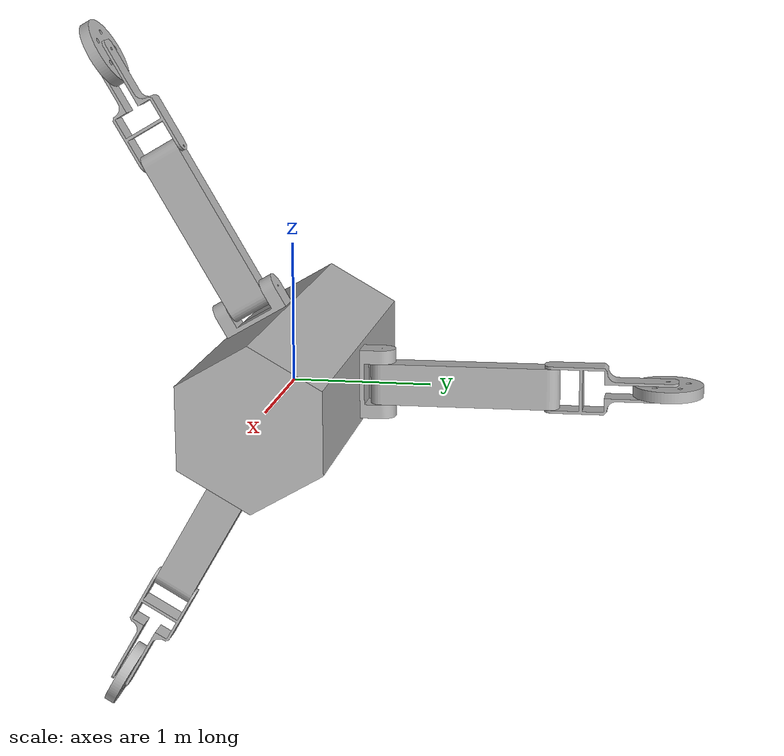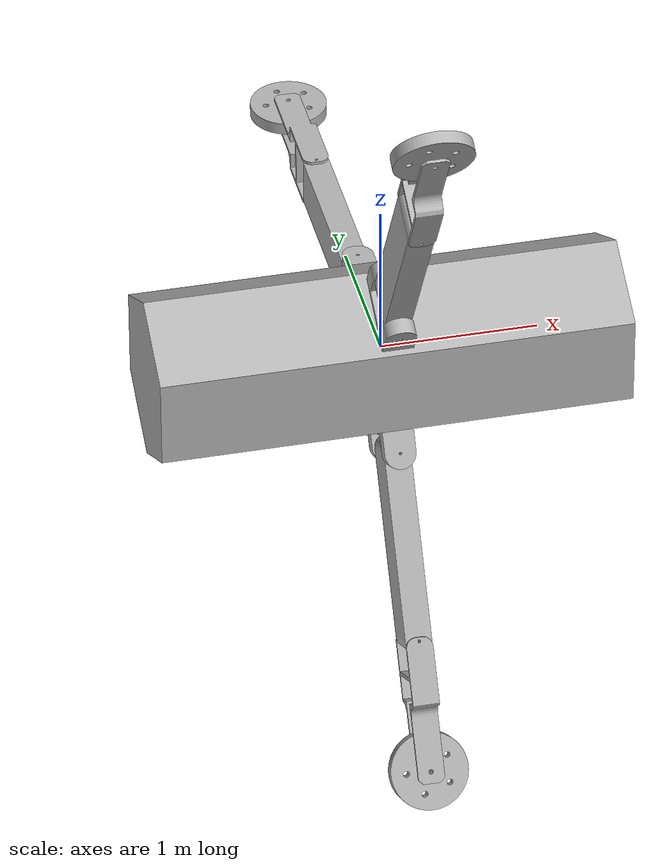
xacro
<?xml version="1.0" ?>
<robot name="fp1" xmlns:xacro="http://www.ros.org/wiki/xacro">

<xacro:include filename="$(find fp1_description)/urdf/materials.xacro" />
<xacro:include filename="$(find fp1_description)/urdf/fp1.trans" />
<xacro:include filename="$(find fp1_description)/urdf/fp1.gazebo" />
<link name="base_link">
  <inertial>
    <origin xyz="-2.8459739193187445e-15 -3.9527415546093675e-16 -3.9527415546093675e-16" rpy="0 0 0"/>
    <mass value="1849.5725333233956"/>
    <inertia ixx="458.823065" iyy="1985.024737" izz="1985.024737" ixy="-0.0" iyz="0.0" ixz="-0.0"/>
  </inertial>
  <visual>
    <origin xyz="0 0 0" rpy="0 0 0"/>
    <geometry>
      <mesh filename="package://fp1_description/meshes/base_link.stl" scale="0.001 0.001 0.001"/>
    </geometry>
    <material name="silver"/>
  </visual>
  <collision>
    <origin xyz="0 0 0" rpy="0 0 0"/>
    <geometry>
      <mesh filename="package://fp1_description/meshes/base_link.stl" scale="0.001 0.001 0.001"/>
    </geometry>
  </collision>
</link>

<link name="flange_1">
  <inertial>
    <origin xyz="-9.828485622862302e-18 0.09749118098964926 0.000530383102575087" rpy="0 0 0"/>
    <mass value="86.77057757551994"/>
    <inertia ixx="3.479919" iyy="3.296628" izz="0.723923" ixy="0.0" iyz="0.013996" ixz="0.0"/>
  </inertial>
  <visual>
    <origin xyz="-0.0 -0.499993 -0.00272" rpy="0 0 0"/>
    <geometry>
      <mesh filename="package://fp1_description/meshes/flange_1.stl" scale="0.001 0.001 0.001"/>
    </geometry>
    <material name="silver"/>
  </visual>
  <collision>
    <origin xyz="-0.0 -0.499993 -0.00272" rpy="0 0 0"/>
    <geometry>
      <mesh filename="package://fp1_description/meshes/flange_1.stl" scale="0.001 0.001 0.001"/>
    </geometry>
  </collision>
</link>

<link name="extender_1">
  <inertial>
    <origin xyz="-2.1119292520476504e-68 0.6008075036234485 -0.14673395593660868" rpy="0 0 0"/>
    <mass value="532.394116161908"/>
    <inertia ixx="82.764575" iyy="5.248694" izz="80.022931" ixy="-0.0" iyz="-0.406793" ixz="-0.0"/>
  </inertial>
  <visual>
    <origin xyz="0.0 -0.649174 -0.153534" rpy="0 0 0"/>
    <geometry>
      <mesh filename="package://fp1_description/meshes/extender_1.stl" scale="0.001 0.001 0.001"/>
    </geometry>
    <material name="silver"/>
  </visual>
  <collision>
    <origin xyz="0.0 -0.649174 -0.153534" rpy="0 0 0"/>
    <geometry>
      <mesh filename="package://fp1_description/meshes/extender_1.stl" scale="0.001 0.001 0.001"/>
    </geometry>
  </collision>
</link>

<link name="flange_2">
  <inertial>
    <origin xyz="-6.311919080486982e-17 -0.04920500483368656 0.08416528754508845" rpy="0 0 0"/>
    <mass value="86.77057757551994"/>
    <inertia ixx="3.479919" iyy="1.37922" izz="2.641331" ixy="-0.0" iyz="-1.121012" ixz="0.0"/>
  </inertial>
  <visual>
    <origin xyz="-0.0 0.252352 -0.431646" rpy="0 0 0"/>
    <geometry>
      <mesh filename="package://fp1_description/meshes/flange_2.stl" scale="0.001 0.001 0.001"/>
    </geometry>
    <material name="silver"/>
  </visual>
  <collision>
    <origin xyz="-0.0 0.252352 -0.431646" rpy="0 0 0"/>
    <geometry>
      <mesh filename="package://fp1_description/meshes/flange_2.stl" scale="0.001 0.001 0.001"/>
    </geometry>
  </collision>
</link>

<link name="extender_2">
  <inertial>
    <origin xyz="2.0332333094184578e-32 -0.43231576271747607 0.44226971436688256" rpy="0 0 0"/>
    <mass value="532.394116161908"/>
    <inertia ixx="82.764575" iyy="60.977079" izz="24.294546" ixy="0.0" iyz="32.581591" ixz="-0.0"/>
  </inertial>
  <visual>
    <origin xyz="0.0 0.198564 -0.636846" rpy="0 0 0"/>
    <geometry>
      <mesh filename="package://fp1_description/meshes/extender_2.stl" scale="0.001 0.001 0.001"/>
    </geometry>
    <material name="silver"/>
  </visual>
  <collision>
    <origin xyz="0.0 0.198564 -0.636846" rpy="0 0 0"/>
    <geometry>
      <mesh filename="package://fp1_description/meshes/extender_2.stl" scale="0.001 0.001 0.001"/>
    </geometry>
  </collision>
</link>

<link name="flange_3">
  <inertial>
    <origin xyz="-2.7592054016864802e-17 -0.04828617615596309 -0.08469567064766331" rpy="0 0 0"/>
    <mass value="86.77057757551994"/>
    <inertia ixx="3.479919" iyy="1.354978" izz="2.665573" ixy="-0.0" iyz="1.107016" ixz="-0.0"/>
  </inertial>
  <visual>
    <origin xyz="-0.0 0.247641 0.434366" rpy="0 0 0"/>
    <geometry>
      <mesh filename="package://fp1_description/meshes/flange_3.stl" scale="0.001 0.001 0.001"/>
    </geometry>
    <material name="silver"/>
  </visual>
  <collision>
    <origin xyz="-0.0 0.247641 0.434366" rpy="0 0 0"/>
    <geometry>
      <mesh filename="package://fp1_description/meshes/flange_3.stl" scale="0.001 0.001 0.001"/>
    </geometry>
  </collision>
</link>

<link name="extender_4">
  <inertial>
    <origin xyz="-4.194440477246574e-32 -0.42747874090597593 -0.44694775843027523" rpy="0 0 0"/>
    <mass value="532.394116161908"/>
    <inertia ixx="82.764575" iyy="61.681665" izz="23.589961" ixy="0.0" iyz="-32.174798" ixz="0.0"/>
  </inertial>
  <visual>
    <origin xyz="0.0 0.191623 0.638968" rpy="0 0 0"/>
    <geometry>
      <mesh filename="package://fp1_description/meshes/extender_4.stl" scale="0.001 0.001 0.001"/>
    </geometry>
    <material name="silver"/>
  </visual>
  <collision>
    <origin xyz="0.0 0.191623 0.638968" rpy="0 0 0"/>
    <geometry>
      <mesh filename="package://fp1_description/meshes/extender_4.stl" scale="0.001 0.001 0.001"/>
    </geometry>
  </collision>
</link>

<link name="wheel_extender_1">
  <inertial>
    <origin xyz="-2.4121971167989907e-16 0.418551855685261 0.15227947692808366" rpy="0 0 0"/>
    <mass value="65.91028992528666"/>
    <inertia ixx="4.737994" iyy="0.981222" izz="4.070825" ixy="-0.0" iyz="-0.016808" ixz="-0.0"/>
  </inertial>
  <visual>
    <origin xyz="0.0 -1.850789 0.139934" rpy="0 0 0"/>
    <geometry>
      <mesh filename="package://fp1_description/meshes/wheel_extender_1.stl" scale="0.001 0.001 0.001"/>
    </geometry>
    <material name="silver"/>
  </visual>
  <collision>
    <origin xyz="0.0 -1.850789 0.139934" rpy="0 0 0"/>
    <geometry>
      <mesh filename="package://fp1_description/meshes/wheel_extender_1.stl" scale="0.001 0.001 0.001"/>
    </geometry>
  </collision>
</link>

<link name="wheel_1">
  <inertial>
    <origin xyz="6.859401935344068e-14 0.0002176595925682534 -0.039999052728155654" rpy="0 0 0"/>
    <mass value="118.9177642385384"/>
    <inertia ixx="1.945292" iyy="1.945346" izz="3.763685" ixy="-0.0" iyz="-0.009892" ixz="0.0"/>
  </inertial>
  <visual>
    <origin xyz="0.0 -2.699688 -0.064687" rpy="0 0 0"/>
    <geometry>
      <mesh filename="package://fp1_description/meshes/wheel_1.stl" scale="0.001 0.001 0.001"/>
    </geometry>
    <material name="silver"/>
  </visual>
  <collision>
    <origin xyz="0.0 -2.699688 -0.064687" rpy="0 0 0"/>
    <geometry>
      <mesh filename="package://fp1_description/meshes/wheel_1.stl" scale="0.001 0.001 0.001"/>
    </geometry>
  </collision>
</link>

<link name="wheel_extender_2">
  <inertial>
    <origin xyz="1.723682480816672e-32 -0.08216592448418925 0.4377480924053143" rpy="0 0 0"/>
    <mass value="65.91028992528666"/>
    <inertia ixx="4.737994" iyy="3.283868" izz="1.768179" ixy="0.0" iyz="1.346242" ixz="0.0"/>
  </inertial>
  <visual>
    <origin xyz="0.0 1.063196 -1.521386" rpy="0 0 0"/>
    <geometry>
      <mesh filename="package://fp1_description/meshes/wheel_extender_2.stl" scale="0.001 0.001 0.001"/>
    </geometry>
    <material name="silver"/>
  </visual>
  <collision>
    <origin xyz="0.0 1.063196 -1.521386" rpy="0 0 0"/>
    <geometry>
      <mesh filename="package://fp1_description/meshes/wheel_extender_2.stl" scale="0.001 0.001 0.001"/>
    </geometry>
  </collision>
</link>

<link name="wheel_extender_4">
  <inertial>
    <origin xyz="-4.5441963347714725e-31 -0.33801793120107815 -0.2900315693333988" rpy="0 0 0"/>
    <mass value="65.91028992528666"/>
    <inertia ixx="4.737994" iyy="3.312981" izz="1.739066" ixy="-0.0" iyz="-1.329433" ixz="0.0"/>
  </inertial>
  <visual>
    <origin xyz="0.0 0.785961 1.681448" rpy="0 0 0"/>
    <geometry>
      <mesh filename="package://fp1_description/meshes/wheel_extender_4.stl" scale="0.001 0.001 0.001"/>
    </geometry>
    <material name="silver"/>
  </visual>
  <collision>
    <origin xyz="0.0 0.785961 1.681448" rpy="0 0 0"/>
    <geometry>
      <mesh filename="package://fp1_description/meshes/wheel_extender_4.stl" scale="0.001 0.001 0.001"/>
    </geometry>
  </collision>
</link>

<link name="wheel_2">
  <inertial>
    <origin xyz="6.934453011808728e-14 -0.03453136787112032 -0.02018800840388657" rpy="0 0 0"/>
    <mass value="118.9177642385384"/>
    <inertia ixx="1.945292" iyy="3.300534" izz="2.408498" ixy="-0.0" iyz="0.79231" ixz="0.0"/>
  </inertial>
  <visual>
    <origin xyz="-0.0 1.319536 -2.356125" rpy="0 0 0"/>
    <geometry>
      <mesh filename="package://fp1_description/meshes/wheel_2.stl" scale="0.001 0.001 0.001"/>
    </geometry>
    <material name="silver"/>
  </visual>
  <collision>
    <origin xyz="-0.0 1.319536 -2.356125" rpy="0 0 0"/>
    <geometry>
      <mesh filename="package://fp1_description/meshes/wheel_2.stl" scale="0.001 0.001 0.001"/>
    </geometry>
  </collision>
</link>

<link name="wheel_3">
  <inertial>
    <origin xyz="6.933564833389027e-14 -0.03474944029157734 0.01981113733553075" rpy="0 0 0"/>
    <mass value="118.9177642385384"/>
    <inertia ixx="1.945292" iyy="3.317668" izz="2.391364" ixy="0.0" iyz="-0.782418" ixz="-0.0"/>
  </inertial>
  <visual>
    <origin xyz="0.0 1.293823 2.370342" rpy="0 0 0"/>
    <geometry>
      <mesh filename="package://fp1_description/meshes/wheel_3.stl" scale="0.001 0.001 0.001"/>
    </geometry>
    <material name="silver"/>
  </visual>
  <collision>
    <origin xyz="0.0 1.293823 2.370342" rpy="0 0 0"/>
    <geometry>
      <mesh filename="package://fp1_description/meshes/wheel_3.stl" scale="0.001 0.001 0.001"/>
    </geometry>
  </collision>
</link>

<joint name="flange_joint1" type="fixed">
  <origin xyz="0.0 0.499993 0.00272" rpy="0 0 0"/>
  <parent link="base_link"/>
  <child link="flange_1"/>
</joint>

<joint name="flangerev1" type="continuous">
  <origin xyz="-0.0 0.149181 0.150814" rpy="0 0 0"/>
  <parent link="flange_1"/>
  <child link="extender_1"/>
  <axis xyz="0.0 -0.00544 0.999985"/>
</joint>

<joint name="flange_joint2" type="fixed">
  <origin xyz="0.0 -0.252352 0.431646" rpy="0 0 0"/>
  <parent link="base_link"/>
  <child link="flange_2"/>
</joint>

<joint name="flangerev2" type="continuous">
  <origin xyz="-0.0 0.053788 0.2052" rpy="0 0 0"/>
  <parent link="flange_2"/>
  <child link="extender_2"/>
  <axis xyz="-0.0 0.863293 0.504704"/>
</joint>

<joint name="flange_joint3" type="fixed">
  <origin xyz="0.0 -0.247641 -0.434366" rpy="0 0 0"/>
  <parent link="base_link"/>
  <child link="flange_3"/>
</joint>

<joint name="flangerev3" type="continuous">
  <origin xyz="-0.0 0.056018 -0.204602" rpy="0 0 0"/>
  <parent link="flange_3"/>
  <child link="extender_4"/>
  <axis xyz="-0.0 0.868733 -0.495281"/>
</joint>

<joint name="extenderrev1" type="continuous">
  <origin xyz="0.0 1.201615 -0.293468" rpy="0 0 0"/>
  <parent link="extender_1"/>
  <child link="wheel_extender_1"/>
  <axis xyz="-0.0 -0.00544 0.999985"/>
</joint>

<joint name="wheelrev1" type="continuous">
  <origin xyz="0.0 0.848899 0.204621" rpy="0 0 0"/>
  <parent link="wheel_extender_1"/>
  <child link="wheel_1"/>
  <axis xyz="0.0 -0.00544 0.999985"/>
</joint>

<joint name="extenderrev2" type="continuous">
  <origin xyz="0.0 -0.864632 0.88454" rpy="0 0 0"/>
  <parent link="extender_2"/>
  <child link="wheel_extender_2"/>
  <axis xyz="0.0 -0.863293 -0.504704"/>
</joint>

<joint name="Revolute 10" type="continuous">
  <origin xyz="0.0 -0.594338 -1.04248" rpy="0 0 0"/>
  <parent link="extender_4"/>
  <child link="wheel_extender_4"/>
  <axis xyz="-0.0 0.868733 -0.495281"/>
</joint>

<joint name="Revolute 11" type="continuous">
  <origin xyz="0.0 -0.25634 0.834739" rpy="0 0 0"/>
  <parent link="wheel_extender_2"/>
  <child link="wheel_2"/>
  <axis xyz="-0.0 0.863293 0.504704"/>
</joint>

<joint name="Revolute 12" type="continuous">
  <origin xyz="0.0 -0.507862 -0.688894" rpy="0 0 0"/>
  <parent link="wheel_extender_4"/>
  <child link="wheel_3"/>
  <axis xyz="-0.0 0.868733 -0.495281"/>
</joint>

</robot>

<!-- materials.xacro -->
<robot name="fp1" xmlns:xacro="http://www.ros.org/wiki/xacro" >

<material name="silver">
  <color rgba="0.700 0.700 0.700 1.000"/>
</material>

</robot>

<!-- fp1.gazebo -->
<robot name="fp1" xmlns:xacro="http://www.ros.org/wiki/xacro" >

<xacro:property name="body_color" value="Gazebo/Silver" />

<gazebo>
  <plugin name="control" filename="libgazebo_ros_control.so"/>
</gazebo>
<gazebo reference="base_link">
  <material>${body_color}</material>
  <mu1>0.2</mu1>
  <mu2>0.2</mu2>
  <selfCollide>true</selfCollide>
  <gravity>true</gravity>
</gazebo>

<gazebo reference="flange_1">
  <material>${body_color}</material>
  <mu1>0.2</mu1>
  <mu2>0.2</mu2>
  <selfCollide>true</selfCollide>
</gazebo>

<gazebo reference="extender_1">
  <material>${body_color}</material>
  <mu1>0.2</mu1>
  <mu2>0.2</mu2>
  <selfCollide>true</selfCollide>
</gazebo>

<gazebo reference="flange_2">
  <material>${body_color}</material>
  <mu1>0.2</mu1>
  <mu2>0.2</mu2>
  <selfCollide>true</selfCollide>
</gazebo>

<gazebo reference="extender_2">
  <material>${body_color}</material>
  <mu1>0.2</mu1>
  <mu2>0.2</mu2>
  <selfCollide>true</selfCollide>
</gazebo>

<gazebo reference="flange_3">
  <material>${body_color}</material>
  <mu1>0.2</mu1>
  <mu2>0.2</mu2>
  <selfCollide>true</selfCollide>
</gazebo>

<gazebo reference="extender_4">
  <material>${body_color}</material>
  <mu1>0.2</mu1>
  <mu2>0.2</mu2>
  <selfCollide>true</selfCollide>
</gazebo>

<gazebo reference="wheel_extender_1">
  <material>${body_color}</material>
  <mu1>0.2</mu1>
  <mu2>0.2</mu2>
  <selfCollide>true</selfCollide>
</gazebo>

<gazebo reference="wheel_1">
  <material>${body_color}</material>
  <mu1>0.2</mu1>
  <mu2>0.2</mu2>
  <selfCollide>true</selfCollide>
</gazebo>

<gazebo reference="wheel_extender_2">
  <material>${body_color}</material>
  <mu1>0.2</mu1>
  <mu2>0.2</mu2>
  <selfCollide>true</selfCollide>
</gazebo>

<gazebo reference="wheel_extender_4">
  <material>${body_color}</material>
  <mu1>0.2</mu1>
  <mu2>0.2</mu2>
  <selfCollide>true</selfCollide>
</gazebo>

<gazebo reference="wheel_2">
  <material>${body_color}</material>
  <mu1>0.2</mu1>
  <mu2>0.2</mu2>
  <selfCollide>true</selfCollide>
</gazebo>

<gazebo reference="wheel_3">
  <material>${body_color}</material>
  <mu1>0.2</mu1>
  <mu2>0.2</mu2>
  <selfCollide>true</selfCollide>
</gazebo>

</robot>
